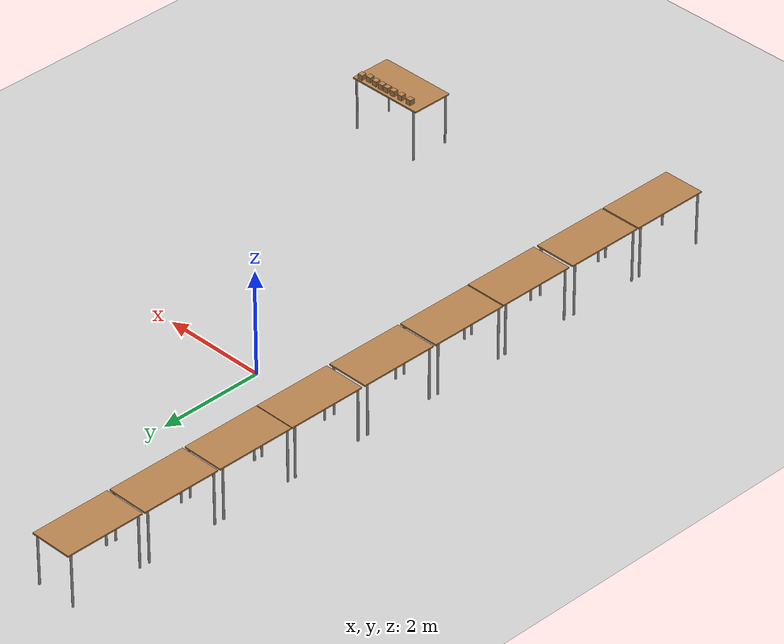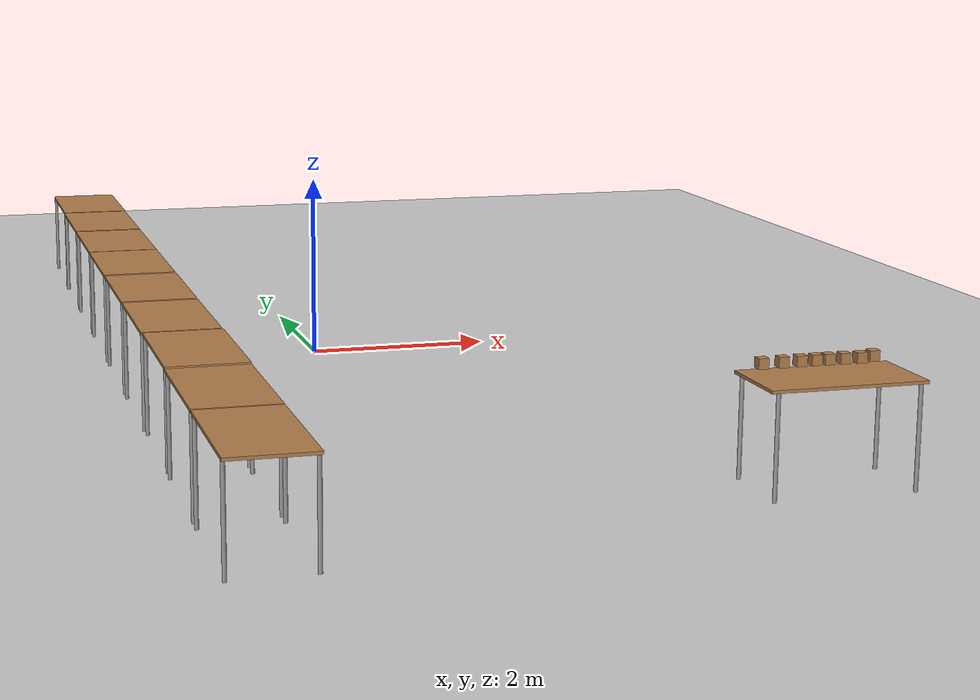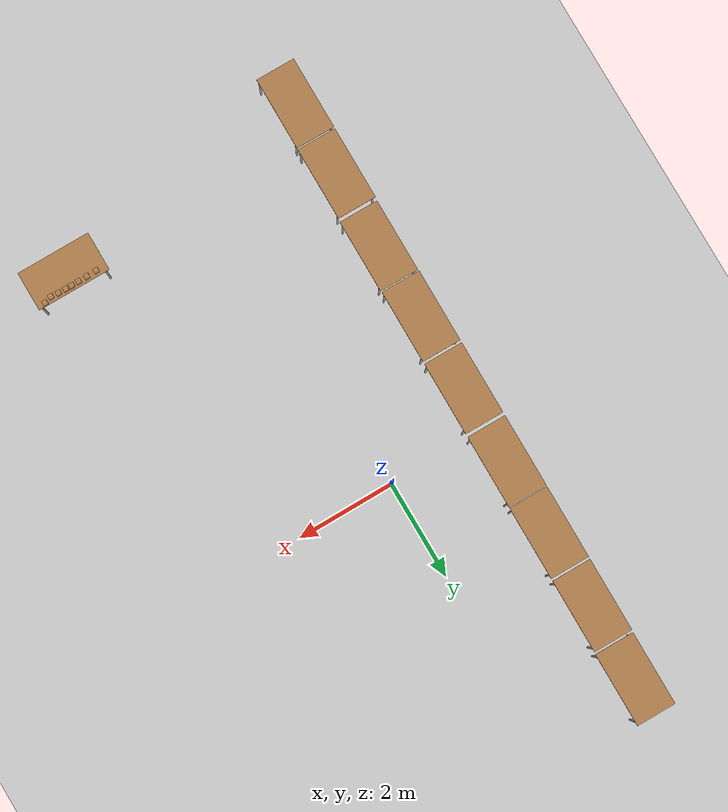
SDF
<sdf version="1.9">
 <world name="empty">
  <model name="ground_plane">
   <static>true</static>
   <link name="link">
    <collision name="collision">
     <geometry><plane><normal>0 0 1</normal><size>100 100</size></plane></geometry>
    </collision>
    <visual name="visual">
     <geometry><plane><normal>0 0 1</normal><size>100 100</size></plane></geometry>
     <material>
      <ambient>0.8 0.8 0.8 1</ambient>
      <diffuse>0.8 0.8 0.8 1</diffuse>
      <specular>0.8 0.8 0.8 1</specular>
     </material>
    </visual>
    <inertial>
     <mass>1</mass>
     <inertia><ixx>1</ixx><ixy>0</ixy><ixz>0</ixz><iyy>1</iyy><iyz>0</iyz><izz>1</izz></inertia>
    </inertial>
   </link>
  </model>
  <model name="Table">
   <static>true</static>
   <link name="link">
    <collision name="surface">
     <pose>0 0 1.0 0 0 0</pose>
     <geometry><box><size>1.5 0.8 0.03</size></box></geometry>
     <surface><friction><ode><mu>0.59999999999999998</mu><mu2>0.59999999999999998</mu2></ode></friction></surface>
    </collision>
    <visual name="visual1">
     <pose>0 0 1.0 0 0 0</pose>
     <geometry><box><size>1.5 0.8 0.03</size></box></geometry>
     <material>
      <diffuse>1 1 1 1</diffuse>
      <script><uri>file://media/materials/scripts/gazebo.material</uri><name>Gazebo/Wood</name></script>
      <pbr>
       <metal>
        <albedo_map>https://fuel.gazebosim.org/1.0/openrobotics/models/table/4/files/Table_Diffuse.jpg</albedo_map>
       </metal>
      </pbr>
     </material>
    </visual>
    <collision name="front_left_leg">
     <pose>0.68 0.38 0.5 0 0 0</pose>
     <geometry><cylinder><radius>0.02</radius><length>1</length></cylinder></geometry>
    </collision>
    <visual name="front_left_leg">
     <pose>0.68 0.38 0.5 0 0 0</pose>
     <geometry><cylinder><radius>0.02</radius><length>1</length></cylinder></geometry>
     <material>
      <diffuse>0.5 0.5 0.5 1</diffuse>
      <script><uri>file://media/materials/scripts/gazebo.material</uri><name>Gazebo/Grey</name></script>
     </material>
    </visual>
    <collision name="front_right_leg">
     <pose>0.68 -0.38 0.5 0 0 0</pose>
     <geometry><cylinder><radius>0.02</radius><length>1</length></cylinder></geometry>
    </collision>
    <visual name="front_right_leg">
     <pose>0.68 -0.38 0.5 0 0 0</pose>
     <geometry><cylinder><radius>0.02</radius><length>1</length></cylinder></geometry>
     <material>
      <diffuse>0.5 0.5 0.5 1</diffuse>
      <script><uri>file://media/materials/scripts/gazebo.material</uri><name>Gazebo/Grey</name></script>
     </material>
    </visual>
    <collision name="back_right_leg">
     <pose>-0.68 -0.38 0.5 0 0 0</pose>
     <geometry><cylinder><radius>0.02</radius><length>1</length></cylinder></geometry>
    </collision>
    <visual name="back_right_leg">
     <pose>-0.68 -0.38 0.5 0 0 0</pose>
     <geometry><cylinder><radius>0.02</radius><length>1</length></cylinder></geometry>
     <material>
      <diffuse>0.5 0.5 0.5 1</diffuse>
      <script><uri>file://media/materials/scripts/gazebo.material</uri><name>Gazebo/Grey</name></script>
     </material>
    </visual>
    <collision name="back_left_leg">
     <pose>-0.68 0.38 0.5 0 0 0</pose>
     <geometry><cylinder><radius>0.02</radius><length>1</length></cylinder></geometry>
    </collision>
    <visual name="back_left_leg">
     <pose>-0.68 0.38 0.5 0 0 0</pose>
     <geometry><cylinder><radius>0.02</radius><length>1</length></cylinder></geometry>
     <material>
      <diffuse>0.5 0.5 0.5 1</diffuse>
      <script><uri>file://media/materials/scripts/gazebo.material</uri><name>Gazebo/Grey</name></script>
     </material>
    </visual>
    <inertial>
     <mass>1</mass>
     <inertia><ixx>1</ixx><ixy>0</ixy><ixz>0</ixz><iyy>1</iyy><iyz>0</iyz><izz>1</izz></inertia>
    </inertial>
   </link>
   <pose>3.27372 -6.4538 0 0 -0 0</pose>
  </model>
  <model name="Table_0">
   <static>true</static>
   <link name="link">
    <collision name="surface">
     <pose>0 0 1.0 0 0 0</pose>
     <geometry><box><size>1.5 0.8 0.03</size></box></geometry>
     <surface><friction><ode><mu>0.59999999999999998</mu><mu2>0.59999999999999998</mu2></ode></friction></surface>
    </collision>
    <visual name="visual1">
     <pose>0 0 1.0 0 0 0</pose>
     <geometry><box><size>1.5 0.8 0.03</size></box></geometry>
     <material>
      <diffuse>1 1 1 1</diffuse>
      <script><uri>file://media/materials/scripts/gazebo.material</uri><name>Gazebo/Wood</name></script>
      <pbr>
       <metal>
        <albedo_map>https://fuel.gazebosim.org/1.0/openrobotics/models/table/4/files/Table_Diffuse.jpg</albedo_map>
       </metal>
      </pbr>
     </material>
    </visual>
    <collision name="front_left_leg">
     <pose>0.68 0.38 0.5 0 0 0</pose>
     <geometry><cylinder><radius>0.02</radius><length>1</length></cylinder></geometry>
    </collision>
    <visual name="front_left_leg">
     <pose>0.68 0.38 0.5 0 0 0</pose>
     <geometry><cylinder><radius>0.02</radius><length>1</length></cylinder></geometry>
     <material>
      <diffuse>0.5 0.5 0.5 1</diffuse>
      <script><uri>file://media/materials/scripts/gazebo.material</uri><name>Gazebo/Grey</name></script>
     </material>
    </visual>
    <collision name="front_right_leg">
     <pose>0.68 -0.38 0.5 0 0 0</pose>
     <geometry><cylinder><radius>0.02</radius><length>1</length></cylinder></geometry>
    </collision>
    <visual name="front_right_leg">
     <pose>0.68 -0.38 0.5 0 0 0</pose>
     <geometry><cylinder><radius>0.02</radius><length>1</length></cylinder></geometry>
     <material>
      <diffuse>0.5 0.5 0.5 1</diffuse>
      <script><uri>file://media/materials/scripts/gazebo.material</uri><name>Gazebo/Grey</name></script>
     </material>
    </visual>
    <collision name="back_right_leg">
     <pose>-0.68 -0.38 0.5 0 0 0</pose>
     <geometry><cylinder><radius>0.02</radius><length>1</length></cylinder></geometry>
    </collision>
    <visual name="back_right_leg">
     <pose>-0.68 -0.38 0.5 0 0 0</pose>
     <geometry><cylinder><radius>0.02</radius><length>1</length></cylinder></geometry>
     <material>
      <diffuse>0.5 0.5 0.5 1</diffuse>
      <script><uri>file://media/materials/scripts/gazebo.material</uri><name>Gazebo/Grey</name></script>
     </material>
    </visual>
    <collision name="back_left_leg">
     <pose>-0.68 0.38 0.5 0 0 0</pose>
     <geometry><cylinder><radius>0.02</radius><length>1</length></cylinder></geometry>
    </collision>
    <visual name="back_left_leg">
     <pose>-0.68 0.38 0.5 0 0 0</pose>
     <geometry><cylinder><radius>0.02</radius><length>1</length></cylinder></geometry>
     <material>
      <diffuse>0.5 0.5 0.5 1</diffuse>
      <script><uri>file://media/materials/scripts/gazebo.material</uri><name>Gazebo/Grey</name></script>
     </material>
    </visual>
    <inertial>
     <mass>1</mass>
     <inertia><ixx>1</ixx><ixy>0</ixy><ixz>0</ixz><iyy>1</iyy><iyz>0</iyz><izz>1</izz></inertia>
    </inertial>
   </link>
   <pose>-2.02943 -7.00327 0 0 0 -1.57338</pose>
  </model>
  <model name="wood_cube_10cm">
   <link name="link">
    <pose>0 0 0.05 0 -0 0</pose>
    <inertial>
     <mass>0.51670000000000005</mass>
     <inertia>
      <ixx>0.00086116700000000003</ixx>
      <ixy>0</ixy>
      <ixz>0</ixz>
      <iyy>0.00086116700000000003</iyy>
      <iyz>0</iyz>
      <izz>0.00086116700000000003</izz>
     </inertia>
    </inertial>
    <collision name="collision">
     <geometry><box><size>0.1 0.1 0.1</size></box></geometry>
     <surface>
      <contact>
       <poissons_ratio>0.34699999999999998</poissons_ratio>
       <elastic_modulus>8800000000</elastic_modulus>
       <ode><kp>100000</kp><kd>100</kd><max_vel>100</max_vel><min_depth>0.001</min_depth></ode>
      </contact>
      <friction>
       <torsional>
        <coefficient>1</coefficient>
        <use_patch_radius>false</use_patch_radius>
        <surface_radius>0.01</surface_radius>
       </torsional>
      </friction>
     </surface>
    </collision>
    <visual name="visual">
     <geometry><box><size>0.1 0.1 0.1</size></box></geometry>
     <material>
      <script><uri>file://media/materials/scripts/gazebo.material</uri><name>Gazebo/Wood</name></script>
     </material>
    </visual>
   </link>
   <pose>2.74446 -6.14621 1.04042 0 -0 0</pose>
   <static>false</static>
  </model>
  <model name="Table_0_1">
   <static>true</static>
   <link name="link">
    <collision name="surface">
     <pose>0 0 1.0 0 0 0</pose>
     <geometry><box><size>1.5 0.8 0.03</size></box></geometry>
     <surface><friction><ode><mu>0.59999999999999998</mu><mu2>0.59999999999999998</mu2></ode></friction></surface>
    </collision>
    <visual name="visual1">
     <pose>0 0 1.0 0 0 0</pose>
     <geometry><box><size>1.5 0.8 0.03</size></box></geometry>
     <material>
      <diffuse>1 1 1 1</diffuse>
      <script><uri>file://media/materials/scripts/gazebo.material</uri><name>Gazebo/Wood</name></script>
      <pbr>
       <metal>
        <albedo_map>https://fuel.gazebosim.org/1.0/openrobotics/models/table/4/files/Table_Diffuse.jpg</albedo_map>
       </metal>
      </pbr>
     </material>
    </visual>
    <collision name="front_left_leg">
     <pose>0.68 0.38 0.5 0 0 0</pose>
     <geometry><cylinder><radius>0.02</radius><length>1</length></cylinder></geometry>
    </collision>
    <visual name="front_left_leg">
     <pose>0.68 0.38 0.5 0 0 0</pose>
     <geometry><cylinder><radius>0.02</radius><length>1</length></cylinder></geometry>
     <material>
      <diffuse>0.5 0.5 0.5 1</diffuse>
      <script><uri>file://media/materials/scripts/gazebo.material</uri><name>Gazebo/Grey</name></script>
     </material>
    </visual>
    <collision name="front_right_leg">
     <pose>0.68 -0.38 0.5 0 0 0</pose>
     <geometry><cylinder><radius>0.02</radius><length>1</length></cylinder></geometry>
    </collision>
    <visual name="front_right_leg">
     <pose>0.68 -0.38 0.5 0 0 0</pose>
     <geometry><cylinder><radius>0.02</radius><length>1</length></cylinder></geometry>
     <material>
      <diffuse>0.5 0.5 0.5 1</diffuse>
      <script><uri>file://media/materials/scripts/gazebo.material</uri><name>Gazebo/Grey</name></script>
     </material>
    </visual>
    <collision name="back_right_leg">
     <pose>-0.68 -0.38 0.5 0 0 0</pose>
     <geometry><cylinder><radius>0.02</radius><length>1</length></cylinder></geometry>
    </collision>
    <visual name="back_right_leg">
     <pose>-0.68 -0.38 0.5 0 0 0</pose>
     <geometry><cylinder><radius>0.02</radius><length>1</length></cylinder></geometry>
     <material>
      <diffuse>0.5 0.5 0.5 1</diffuse>
      <script><uri>file://media/materials/scripts/gazebo.material</uri><name>Gazebo/Grey</name></script>
     </material>
    </visual>
    <collision name="back_left_leg">
     <pose>-0.68 0.38 0.5 0 0 0</pose>
     <geometry><cylinder><radius>0.02</radius><length>1</length></cylinder></geometry>
    </collision>
    <visual name="back_left_leg">
     <pose>-0.68 0.38 0.5 0 0 0</pose>
     <geometry><cylinder><radius>0.02</radius><length>1</length></cylinder></geometry>
     <material>
      <diffuse>0.5 0.5 0.5 1</diffuse>
      <script><uri>file://media/materials/scripts/gazebo.material</uri><name>Gazebo/Grey</name></script>
     </material>
    </visual>
    <inertial>
     <mass>1</mass>
     <inertia><ixx>1</ixx><ixy>0</ixy><ixz>0</ixz><iyy>1</iyy><iyz>0</iyz><izz>1</izz></inertia>
    </inertial>
   </link>
   <pose>-2.02364 -5.47185 0 0 0 -1.57338</pose>
  </model>
  <model name="Table_0_2">
   <static>true</static>
   <link name="link">
    <collision name="surface">
     <pose>0 0 1.0 0 0 0</pose>
     <geometry><box><size>1.5 0.8 0.03</size></box></geometry>
     <surface><friction><ode><mu>0.59999999999999998</mu><mu2>0.59999999999999998</mu2></ode></friction></surface>
    </collision>
    <visual name="visual1">
     <pose>0 0 1.0 0 0 0</pose>
     <geometry><box><size>1.5 0.8 0.03</size></box></geometry>
     <material>
      <diffuse>1 1 1 1</diffuse>
      <script><uri>file://media/materials/scripts/gazebo.material</uri><name>Gazebo/Wood</name></script>
      <pbr>
       <metal>
        <albedo_map>https://fuel.gazebosim.org/1.0/openrobotics/models/table/4/files/Table_Diffuse.jpg</albedo_map>
       </metal>
      </pbr>
     </material>
    </visual>
    <collision name="front_left_leg">
     <pose>0.68 0.38 0.5 0 0 0</pose>
     <geometry><cylinder><radius>0.02</radius><length>1</length></cylinder></geometry>
    </collision>
    <visual name="front_left_leg">
     <pose>0.68 0.38 0.5 0 0 0</pose>
     <geometry><cylinder><radius>0.02</radius><length>1</length></cylinder></geometry>
     <material>
      <diffuse>0.5 0.5 0.5 1</diffuse>
      <script><uri>file://media/materials/scripts/gazebo.material</uri><name>Gazebo/Grey</name></script>
     </material>
    </visual>
    <collision name="front_right_leg">
     <pose>0.68 -0.38 0.5 0 0 0</pose>
     <geometry><cylinder><radius>0.02</radius><length>1</length></cylinder></geometry>
    </collision>
    <visual name="front_right_leg">
     <pose>0.68 -0.38 0.5 0 0 0</pose>
     <geometry><cylinder><radius>0.02</radius><length>1</length></cylinder></geometry>
     <material>
      <diffuse>0.5 0.5 0.5 1</diffuse>
      <script><uri>file://media/materials/scripts/gazebo.material</uri><name>Gazebo/Grey</name></script>
     </material>
    </visual>
    <collision name="back_right_leg">
     <pose>-0.68 -0.38 0.5 0 0 0</pose>
     <geometry><cylinder><radius>0.02</radius><length>1</length></cylinder></geometry>
    </collision>
    <visual name="back_right_leg">
     <pose>-0.68 -0.38 0.5 0 0 0</pose>
     <geometry><cylinder><radius>0.02</radius><length>1</length></cylinder></geometry>
     <material>
      <diffuse>0.5 0.5 0.5 1</diffuse>
      <script><uri>file://media/materials/scripts/gazebo.material</uri><name>Gazebo/Grey</name></script>
     </material>
    </visual>
    <collision name="back_left_leg">
     <pose>-0.68 0.38 0.5 0 0 0</pose>
     <geometry><cylinder><radius>0.02</radius><length>1</length></cylinder></geometry>
    </collision>
    <visual name="back_left_leg">
     <pose>-0.68 0.38 0.5 0 0 0</pose>
     <geometry><cylinder><radius>0.02</radius><length>1</length></cylinder></geometry>
     <material>
      <diffuse>0.5 0.5 0.5 1</diffuse>
      <script><uri>file://media/materials/scripts/gazebo.material</uri><name>Gazebo/Grey</name></script>
     </material>
    </visual>
    <inertial>
     <mass>1</mass>
     <inertia><ixx>1</ixx><ixy>0</ixy><ixz>0</ixz><iyy>1</iyy><iyz>0</iyz><izz>1</izz></inertia>
    </inertial>
   </link>
   <pose>-2.00777 -3.89952 0 0 0 -1.57338</pose>
  </model>
  <model name="Table_0_3">
   <static>true</static>
   <link name="link">
    <collision name="surface">
     <pose>0 0 1.0 0 0 0</pose>
     <geometry><box><size>1.5 0.8 0.03</size></box></geometry>
     <surface><friction><ode><mu>0.59999999999999998</mu><mu2>0.59999999999999998</mu2></ode></friction></surface>
    </collision>
    <visual name="visual1">
     <pose>0 0 1.0 0 0 0</pose>
     <geometry><box><size>1.5 0.8 0.03</size></box></geometry>
     <material>
      <diffuse>1 1 1 1</diffuse>
      <script><uri>file://media/materials/scripts/gazebo.material</uri><name>Gazebo/Wood</name></script>
      <pbr>
       <metal>
        <albedo_map>https://fuel.gazebosim.org/1.0/openrobotics/models/table/4/files/Table_Diffuse.jpg</albedo_map>
       </metal>
      </pbr>
     </material>
    </visual>
    <collision name="front_left_leg">
     <pose>0.68 0.38 0.5 0 0 0</pose>
     <geometry><cylinder><radius>0.02</radius><length>1</length></cylinder></geometry>
    </collision>
    <visual name="front_left_leg">
     <pose>0.68 0.38 0.5 0 0 0</pose>
     <geometry><cylinder><radius>0.02</radius><length>1</length></cylinder></geometry>
     <material>
      <diffuse>0.5 0.5 0.5 1</diffuse>
      <script><uri>file://media/materials/scripts/gazebo.material</uri><name>Gazebo/Grey</name></script>
     </material>
    </visual>
    <collision name="front_right_leg">
     <pose>0.68 -0.38 0.5 0 0 0</pose>
     <geometry><cylinder><radius>0.02</radius><length>1</length></cylinder></geometry>
    </collision>
    <visual name="front_right_leg">
     <pose>0.68 -0.38 0.5 0 0 0</pose>
     <geometry><cylinder><radius>0.02</radius><length>1</length></cylinder></geometry>
     <material>
      <diffuse>0.5 0.5 0.5 1</diffuse>
      <script><uri>file://media/materials/scripts/gazebo.material</uri><name>Gazebo/Grey</name></script>
     </material>
    </visual>
    <collision name="back_right_leg">
     <pose>-0.68 -0.38 0.5 0 0 0</pose>
     <geometry><cylinder><radius>0.02</radius><length>1</length></cylinder></geometry>
    </collision>
    <visual name="back_right_leg">
     <pose>-0.68 -0.38 0.5 0 0 0</pose>
     <geometry><cylinder><radius>0.02</radius><length>1</length></cylinder></geometry>
     <material>
      <diffuse>0.5 0.5 0.5 1</diffuse>
      <script><uri>file://media/materials/scripts/gazebo.material</uri><name>Gazebo/Grey</name></script>
     </material>
    </visual>
    <collision name="back_left_leg">
     <pose>-0.68 0.38 0.5 0 0 0</pose>
     <geometry><cylinder><radius>0.02</radius><length>1</length></cylinder></geometry>
    </collision>
    <visual name="back_left_leg">
     <pose>-0.68 0.38 0.5 0 0 0</pose>
     <geometry><cylinder><radius>0.02</radius><length>1</length></cylinder></geometry>
     <material>
      <diffuse>0.5 0.5 0.5 1</diffuse>
      <script><uri>file://media/materials/scripts/gazebo.material</uri><name>Gazebo/Grey</name></script>
     </material>
    </visual>
    <inertial>
     <mass>1</mass>
     <inertia><ixx>1</ixx><ixy>0</ixy><ixz>0</ixz><iyy>1</iyy><iyz>0</iyz><izz>1</izz></inertia>
    </inertial>
   </link>
   <pose>-2.01273 -2.37281 0 0 0 -1.57338</pose>
  </model>
  <model name="Table_0_4">
   <static>true</static>
   <link name="link">
    <collision name="surface">
     <pose>0 0 1.0 0 0 0</pose>
     <geometry><box><size>1.5 0.8 0.03</size></box></geometry>
     <surface><friction><ode><mu>0.59999999999999998</mu><mu2>0.59999999999999998</mu2></ode></friction></surface>
    </collision>
    <visual name="visual1">
     <pose>0 0 1.0 0 0 0</pose>
     <geometry><box><size>1.5 0.8 0.03</size></box></geometry>
     <material>
      <diffuse>1 1 1 1</diffuse>
      <script><uri>file://media/materials/scripts/gazebo.material</uri><name>Gazebo/Wood</name></script>
      <pbr>
       <metal>
        <albedo_map>https://fuel.gazebosim.org/1.0/openrobotics/models/table/4/files/Table_Diffuse.jpg</albedo_map>
       </metal>
      </pbr>
     </material>
    </visual>
    <collision name="front_left_leg">
     <pose>0.68 0.38 0.5 0 0 0</pose>
     <geometry><cylinder><radius>0.02</radius><length>1</length></cylinder></geometry>
    </collision>
    <visual name="front_left_leg">
     <pose>0.68 0.38 0.5 0 0 0</pose>
     <geometry><cylinder><radius>0.02</radius><length>1</length></cylinder></geometry>
     <material>
      <diffuse>0.5 0.5 0.5 1</diffuse>
      <script><uri>file://media/materials/scripts/gazebo.material</uri><name>Gazebo/Grey</name></script>
     </material>
    </visual>
    <collision name="front_right_leg">
     <pose>0.68 -0.38 0.5 0 0 0</pose>
     <geometry><cylinder><radius>0.02</radius><length>1</length></cylinder></geometry>
    </collision>
    <visual name="front_right_leg">
     <pose>0.68 -0.38 0.5 0 0 0</pose>
     <geometry><cylinder><radius>0.02</radius><length>1</length></cylinder></geometry>
     <material>
      <diffuse>0.5 0.5 0.5 1</diffuse>
      <script><uri>file://media/materials/scripts/gazebo.material</uri><name>Gazebo/Grey</name></script>
     </material>
    </visual>
    <collision name="back_right_leg">
     <pose>-0.68 -0.38 0.5 0 0 0</pose>
     <geometry><cylinder><radius>0.02</radius><length>1</length></cylinder></geometry>
    </collision>
    <visual name="back_right_leg">
     <pose>-0.68 -0.38 0.5 0 0 0</pose>
     <geometry><cylinder><radius>0.02</radius><length>1</length></cylinder></geometry>
     <material>
      <diffuse>0.5 0.5 0.5 1</diffuse>
      <script><uri>file://media/materials/scripts/gazebo.material</uri><name>Gazebo/Grey</name></script>
     </material>
    </visual>
    <collision name="back_left_leg">
     <pose>-0.68 0.38 0.5 0 0 0</pose>
     <geometry><cylinder><radius>0.02</radius><length>1</length></cylinder></geometry>
    </collision>
    <visual name="back_left_leg">
     <pose>-0.68 0.38 0.5 0 0 0</pose>
     <geometry><cylinder><radius>0.02</radius><length>1</length></cylinder></geometry>
     <material>
      <diffuse>0.5 0.5 0.5 1</diffuse>
      <script><uri>file://media/materials/scripts/gazebo.material</uri><name>Gazebo/Grey</name></script>
     </material>
    </visual>
    <inertial>
     <mass>1</mass>
     <inertia><ixx>1</ixx><ixy>0</ixy><ixz>0</ixz><iyy>1</iyy><iyz>0</iyz><izz>1</izz></inertia>
    </inertial>
   </link>
   <pose>-2.00797 -0.821889 0 0 0 -1.57338</pose>
  </model>
  <model name="Table_0_5">
   <static>true</static>
   <link name="link">
    <collision name="surface">
     <pose>0 0 1.0 0 0 0</pose>
     <geometry><box><size>1.5 0.8 0.03</size></box></geometry>
     <surface><friction><ode><mu>0.59999999999999998</mu><mu2>0.59999999999999998</mu2></ode></friction></surface>
    </collision>
    <visual name="visual1">
     <pose>0 0 1.0 0 0 0</pose>
     <geometry><box><size>1.5 0.8 0.03</size></box></geometry>
     <material>
      <diffuse>1 1 1 1</diffuse>
      <script><uri>file://media/materials/scripts/gazebo.material</uri><name>Gazebo/Wood</name></script>
      <pbr>
       <metal>
        <albedo_map>https://fuel.gazebosim.org/1.0/openrobotics/models/table/4/files/Table_Diffuse.jpg</albedo_map>
       </metal>
      </pbr>
     </material>
    </visual>
    <collision name="front_left_leg">
     <pose>0.68 0.38 0.5 0 0 0</pose>
     <geometry><cylinder><radius>0.02</radius><length>1</length></cylinder></geometry>
    </collision>
    <visual name="front_left_leg">
     <pose>0.68 0.38 0.5 0 0 0</pose>
     <geometry><cylinder><radius>0.02</radius><length>1</length></cylinder></geometry>
     <material>
      <diffuse>0.5 0.5 0.5 1</diffuse>
      <script><uri>file://media/materials/scripts/gazebo.material</uri><name>Gazebo/Grey</name></script>
     </material>
    </visual>
    <collision name="front_right_leg">
     <pose>0.68 -0.38 0.5 0 0 0</pose>
     <geometry><cylinder><radius>0.02</radius><length>1</length></cylinder></geometry>
    </collision>
    <visual name="front_right_leg">
     <pose>0.68 -0.38 0.5 0 0 0</pose>
     <geometry><cylinder><radius>0.02</radius><length>1</length></cylinder></geometry>
     <material>
      <diffuse>0.5 0.5 0.5 1</diffuse>
      <script><uri>file://media/materials/scripts/gazebo.material</uri><name>Gazebo/Grey</name></script>
     </material>
    </visual>
    <collision name="back_right_leg">
     <pose>-0.68 -0.38 0.5 0 0 0</pose>
     <geometry><cylinder><radius>0.02</radius><length>1</length></cylinder></geometry>
    </collision>
    <visual name="back_right_leg">
     <pose>-0.68 -0.38 0.5 0 0 0</pose>
     <geometry><cylinder><radius>0.02</radius><length>1</length></cylinder></geometry>
     <material>
      <diffuse>0.5 0.5 0.5 1</diffuse>
      <script><uri>file://media/materials/scripts/gazebo.material</uri><name>Gazebo/Grey</name></script>
     </material>
    </visual>
    <collision name="back_left_leg">
     <pose>-0.68 0.38 0.5 0 0 0</pose>
     <geometry><cylinder><radius>0.02</radius><length>1</length></cylinder></geometry>
    </collision>
    <visual name="back_left_leg">
     <pose>-0.68 0.38 0.5 0 0 0</pose>
     <geometry><cylinder><radius>0.02</radius><length>1</length></cylinder></geometry>
     <material>
      <diffuse>0.5 0.5 0.5 1</diffuse>
      <script><uri>file://media/materials/scripts/gazebo.material</uri><name>Gazebo/Grey</name></script>
     </material>
    </visual>
    <inertial>
     <mass>1</mass>
     <inertia><ixx>1</ixx><ixy>0</ixy><ixz>0</ixz><iyy>1</iyy><iyz>0</iyz><izz>1</izz></inertia>
    </inertial>
   </link>
   <pose>-2.00482 0.744512 0 0 0 -1.57338</pose>
  </model>
  <model name="Table_0_6">
   <static>true</static>
   <link name="link">
    <collision name="surface">
     <pose>0 0 1.0 0 0 0</pose>
     <geometry><box><size>1.5 0.8 0.03</size></box></geometry>
     <surface><friction><ode><mu>0.59999999999999998</mu><mu2>0.59999999999999998</mu2></ode></friction></surface>
    </collision>
    <visual name="visual1">
     <pose>0 0 1.0 0 0 0</pose>
     <geometry><box><size>1.5 0.8 0.03</size></box></geometry>
     <material>
      <diffuse>1 1 1 1</diffuse>
      <script><uri>file://media/materials/scripts/gazebo.material</uri><name>Gazebo/Wood</name></script>
      <pbr>
       <metal>
        <albedo_map>https://fuel.gazebosim.org/1.0/openrobotics/models/table/4/files/Table_Diffuse.jpg</albedo_map>
       </metal>
      </pbr>
     </material>
    </visual>
    <collision name="front_left_leg">
     <pose>0.68 0.38 0.5 0 0 0</pose>
     <geometry><cylinder><radius>0.02</radius><length>1</length></cylinder></geometry>
    </collision>
    <visual name="front_left_leg">
     <pose>0.68 0.38 0.5 0 0 0</pose>
     <geometry><cylinder><radius>0.02</radius><length>1</length></cylinder></geometry>
     <material>
      <diffuse>0.5 0.5 0.5 1</diffuse>
      <script><uri>file://media/materials/scripts/gazebo.material</uri><name>Gazebo/Grey</name></script>
     </material>
    </visual>
    <collision name="front_right_leg">
     <pose>0.68 -0.38 0.5 0 0 0</pose>
     <geometry><cylinder><radius>0.02</radius><length>1</length></cylinder></geometry>
    </collision>
    <visual name="front_right_leg">
     <pose>0.68 -0.38 0.5 0 0 0</pose>
     <geometry><cylinder><radius>0.02</radius><length>1</length></cylinder></geometry>
     <material>
      <diffuse>0.5 0.5 0.5 1</diffuse>
      <script><uri>file://media/materials/scripts/gazebo.material</uri><name>Gazebo/Grey</name></script>
     </material>
    </visual>
    <collision name="back_right_leg">
     <pose>-0.68 -0.38 0.5 0 0 0</pose>
     <geometry><cylinder><radius>0.02</radius><length>1</length></cylinder></geometry>
    </collision>
    <visual name="back_right_leg">
     <pose>-0.68 -0.38 0.5 0 0 0</pose>
     <geometry><cylinder><radius>0.02</radius><length>1</length></cylinder></geometry>
     <material>
      <diffuse>0.5 0.5 0.5 1</diffuse>
      <script><uri>file://media/materials/scripts/gazebo.material</uri><name>Gazebo/Grey</name></script>
     </material>
    </visual>
    <collision name="back_left_leg">
     <pose>-0.68 0.38 0.5 0 0 0</pose>
     <geometry><cylinder><radius>0.02</radius><length>1</length></cylinder></geometry>
    </collision>
    <visual name="back_left_leg">
     <pose>-0.68 0.38 0.5 0 0 0</pose>
     <geometry><cylinder><radius>0.02</radius><length>1</length></cylinder></geometry>
     <material>
      <diffuse>0.5 0.5 0.5 1</diffuse>
      <script><uri>file://media/materials/scripts/gazebo.material</uri><name>Gazebo/Grey</name></script>
     </material>
    </visual>
    <inertial>
     <mass>1</mass>
     <inertia><ixx>1</ixx><ixy>0</ixy><ixz>0</ixz><iyy>1</iyy><iyz>0</iyz><izz>1</izz></inertia>
    </inertial>
   </link>
   <pose>-1.9994 2.25999 0 0 0 -1.57338</pose>
  </model>
  <model name="Table_0_7">
   <static>true</static>
   <link name="link">
    <collision name="surface">
     <pose>0 0 1.0 0 0 0</pose>
     <geometry><box><size>1.5 0.8 0.03</size></box></geometry>
     <surface><friction><ode><mu>0.59999999999999998</mu><mu2>0.59999999999999998</mu2></ode></friction></surface>
    </collision>
    <visual name="visual1">
     <pose>0 0 1.0 0 0 0</pose>
     <geometry><box><size>1.5 0.8 0.03</size></box></geometry>
     <material>
      <diffuse>1 1 1 1</diffuse>
      <script><uri>file://media/materials/scripts/gazebo.material</uri><name>Gazebo/Wood</name></script>
      <pbr>
       <metal>
        <albedo_map>https://fuel.gazebosim.org/1.0/openrobotics/models/table/4/files/Table_Diffuse.jpg</albedo_map>
       </metal>
      </pbr>
     </material>
    </visual>
    <collision name="front_left_leg">
     <pose>0.68 0.38 0.5 0 0 0</pose>
     <geometry><cylinder><radius>0.02</radius><length>1</length></cylinder></geometry>
    </collision>
    <visual name="front_left_leg">
     <pose>0.68 0.38 0.5 0 0 0</pose>
     <geometry><cylinder><radius>0.02</radius><length>1</length></cylinder></geometry>
     <material>
      <diffuse>0.5 0.5 0.5 1</diffuse>
      <script><uri>file://media/materials/scripts/gazebo.material</uri><name>Gazebo/Grey</name></script>
     </material>
    </visual>
    <collision name="front_right_leg">
     <pose>0.68 -0.38 0.5 0 0 0</pose>
     <geometry><cylinder><radius>0.02</radius><length>1</length></cylinder></geometry>
    </collision>
    <visual name="front_right_leg">
     <pose>0.68 -0.38 0.5 0 0 0</pose>
     <geometry><cylinder><radius>0.02</radius><length>1</length></cylinder></geometry>
     <material>
      <diffuse>0.5 0.5 0.5 1</diffuse>
      <script><uri>file://media/materials/scripts/gazebo.material</uri><name>Gazebo/Grey</name></script>
     </material>
    </visual>
    <collision name="back_right_leg">
     <pose>-0.68 -0.38 0.5 0 0 0</pose>
     <geometry><cylinder><radius>0.02</radius><length>1</length></cylinder></geometry>
    </collision>
    <visual name="back_right_leg">
     <pose>-0.68 -0.38 0.5 0 0 0</pose>
     <geometry><cylinder><radius>0.02</radius><length>1</length></cylinder></geometry>
     <material>
      <diffuse>0.5 0.5 0.5 1</diffuse>
      <script><uri>file://media/materials/scripts/gazebo.material</uri><name>Gazebo/Grey</name></script>
     </material>
    </visual>
    <collision name="back_left_leg">
     <pose>-0.68 0.38 0.5 0 0 0</pose>
     <geometry><cylinder><radius>0.02</radius><length>1</length></cylinder></geometry>
    </collision>
    <visual name="back_left_leg">
     <pose>-0.68 0.38 0.5 0 0 0</pose>
     <geometry><cylinder><radius>0.02</radius><length>1</length></cylinder></geometry>
     <material>
      <diffuse>0.5 0.5 0.5 1</diffuse>
      <script><uri>file://media/materials/scripts/gazebo.material</uri><name>Gazebo/Grey</name></script>
     </material>
    </visual>
    <inertial>
     <mass>1</mass>
     <inertia><ixx>1</ixx><ixy>0</ixy><ixz>0</ixz><iyy>1</iyy><iyz>0</iyz><izz>1</izz></inertia>
    </inertial>
   </link>
   <pose>-1.99331 3.8059 0 0 0 -1.57338</pose>
  </model>
  <model name="Table_0_8">
   <static>true</static>
   <link name="link">
    <collision name="surface">
     <pose>0 0 1.0 0 0 0</pose>
     <geometry><box><size>1.5 0.8 0.03</size></box></geometry>
     <surface><friction><ode><mu>0.59999999999999998</mu><mu2>0.59999999999999998</mu2></ode></friction></surface>
    </collision>
    <visual name="visual1">
     <pose>0 0 1.0 0 0 0</pose>
     <geometry><box><size>1.5 0.8 0.03</size></box></geometry>
     <material>
      <diffuse>1 1 1 1</diffuse>
      <script><uri>file://media/materials/scripts/gazebo.material</uri><name>Gazebo/Wood</name></script>
      <pbr>
       <metal>
        <albedo_map>https://fuel.gazebosim.org/1.0/openrobotics/models/table/4/files/Table_Diffuse.jpg</albedo_map>
       </metal>
      </pbr>
     </material>
    </visual>
    <collision name="front_left_leg">
     <pose>0.68 0.38 0.5 0 0 0</pose>
     <geometry><cylinder><radius>0.02</radius><length>1</length></cylinder></geometry>
    </collision>
    <visual name="front_left_leg">
     <pose>0.68 0.38 0.5 0 0 0</pose>
     <geometry><cylinder><radius>0.02</radius><length>1</length></cylinder></geometry>
     <material>
      <diffuse>0.5 0.5 0.5 1</diffuse>
      <script><uri>file://media/materials/scripts/gazebo.material</uri><name>Gazebo/Grey</name></script>
     </material>
    </visual>
    <collision name="front_right_leg">
     <pose>0.68 -0.38 0.5 0 0 0</pose>
     <geometry><cylinder><radius>0.02</radius><length>1</length></cylinder></geometry>
    </collision>
    <visual name="front_right_leg">
     <pose>0.68 -0.38 0.5 0 0 0</pose>
     <geometry><cylinder><radius>0.02</radius><length>1</length></cylinder></geometry>
     <material>
      <diffuse>0.5 0.5 0.5 1</diffuse>
      <script><uri>file://media/materials/scripts/gazebo.material</uri><name>Gazebo/Grey</name></script>
     </material>
    </visual>
    <collision name="back_right_leg">
     <pose>-0.68 -0.38 0.5 0 0 0</pose>
     <geometry><cylinder><radius>0.02</radius><length>1</length></cylinder></geometry>
    </collision>
    <visual name="back_right_leg">
     <pose>-0.68 -0.38 0.5 0 0 0</pose>
     <geometry><cylinder><radius>0.02</radius><length>1</length></cylinder></geometry>
     <material>
      <diffuse>0.5 0.5 0.5 1</diffuse>
      <script><uri>file://media/materials/scripts/gazebo.material</uri><name>Gazebo/Grey</name></script>
     </material>
    </visual>
    <collision name="back_left_leg">
     <pose>-0.68 0.38 0.5 0 0 0</pose>
     <geometry><cylinder><radius>0.02</radius><length>1</length></cylinder></geometry>
    </collision>
    <visual name="back_left_leg">
     <pose>-0.68 0.38 0.5 0 0 0</pose>
     <geometry><cylinder><radius>0.02</radius><length>1</length></cylinder></geometry>
     <material>
      <diffuse>0.5 0.5 0.5 1</diffuse>
      <script><uri>file://media/materials/scripts/gazebo.material</uri><name>Gazebo/Grey</name></script>
     </material>
    </visual>
    <inertial>
     <mass>1</mass>
     <inertia><ixx>1</ixx><ixy>0</ixy><ixz>0</ixz><iyy>1</iyy><iyz>0</iyz><izz>1</izz></inertia>
    </inertial>
   </link>
   <pose>-1.97964 5.34876 0 0 0 -1.57338</pose>
  </model>
  <model name="wood_cube_10cm_1">
   <link name="link">
    <pose>0 0 0.05 0 -0 0</pose>
    <inertial>
     <mass>0.51670000000000005</mass>
     <inertia>
      <ixx>0.00086116700000000003</ixx>
      <ixy>0</ixy>
      <ixz>0</ixz>
      <iyy>0.00086116700000000003</iyy>
      <iyz>0</iyz>
      <izz>0.00086116700000000003</izz>
     </inertia>
    </inertial>
    <collision name="collision">
     <geometry><box><size>0.1 0.1 0.1</size></box></geometry>
     <surface>
      <contact>
       <poissons_ratio>0.34699999999999998</poissons_ratio>
       <elastic_modulus>8800000000</elastic_modulus>
       <ode><kp>100000</kp><kd>100</kd><max_vel>100</max_vel><min_depth>0.001</min_depth></ode>
      </contact>
      <friction>
       <torsional>
        <coefficient>1</coefficient>
        <use_patch_radius>false</use_patch_radius>
        <surface_radius>0.01</surface_radius>
       </torsional>
      </friction>
     </surface>
    </collision>
    <visual name="visual">
     <geometry><box><size>0.1 0.1 0.1</size></box></geometry>
     <material>
      <script><uri>file://media/materials/scripts/gazebo.material</uri><name>Gazebo/Wood</name></script>
     </material>
    </visual>
   </link>
   <pose>2.94626 -6.13952 1.04042 0 -0 0</pose>
   <static>false</static>
  </model>
  <model name="wood_cube_10cm_1_1">
   <link name="link">
    <pose>0 0 0.05 0 -0 0</pose>
    <inertial>
     <mass>0.51670000000000005</mass>
     <inertia>
      <ixx>0.00086116700000000003</ixx>
      <ixy>0</ixy>
      <ixz>0</ixz>
      <iyy>0.00086116700000000003</iyy>
      <iyz>0</iyz>
      <izz>0.00086116700000000003</izz>
     </inertia>
    </inertial>
    <collision name="collision">
     <geometry><box><size>0.1 0.1 0.1</size></box></geometry>
     <surface>
      <contact>
       <poissons_ratio>0.34699999999999998</poissons_ratio>
       <elastic_modulus>8800000000</elastic_modulus>
       <ode><kp>100000</kp><kd>100</kd><max_vel>100</max_vel><min_depth>0.001</min_depth></ode>
      </contact>
      <friction>
       <torsional>
        <coefficient>1</coefficient>
        <use_patch_radius>false</use_patch_radius>
        <surface_radius>0.01</surface_radius>
       </torsional>
      </friction>
     </surface>
    </collision>
    <visual name="visual">
     <geometry><box><size>0.1 0.1 0.1</size></box></geometry>
     <material>
      <script><uri>file://media/materials/scripts/gazebo.material</uri><name>Gazebo/Wood</name></script>
     </material>
    </visual>
   </link>
   <pose>3.12364 -6.13713 1.04042 0 -0 0</pose>
   <static>false</static>
  </model>
  <model name="wood_cube_10cm_1_2">
   <link name="link">
    <pose>0 0 0.05 0 -0 0</pose>
    <inertial>
     <mass>0.51670000000000005</mass>
     <inertia>
      <ixx>0.00086116700000000003</ixx>
      <ixy>0</ixy>
      <ixz>0</ixz>
      <iyy>0.00086116700000000003</iyy>
      <iyz>0</iyz>
      <izz>0.00086116700000000003</izz>
     </inertia>
    </inertial>
    <collision name="collision">
     <geometry><box><size>0.1 0.1 0.1</size></box></geometry>
     <surface>
      <contact>
       <poissons_ratio>0.34699999999999998</poissons_ratio>
       <elastic_modulus>8800000000</elastic_modulus>
       <ode><kp>100000</kp><kd>100</kd><max_vel>100</max_vel><min_depth>0.001</min_depth></ode>
      </contact>
      <friction>
       <torsional>
        <coefficient>1</coefficient>
        <use_patch_radius>false</use_patch_radius>
        <surface_radius>0.01</surface_radius>
       </torsional>
      </friction>
     </surface>
    </collision>
    <visual name="visual">
     <geometry><box><size>0.1 0.1 0.1</size></box></geometry>
     <material>
      <script><uri>file://media/materials/scripts/gazebo.material</uri><name>Gazebo/Wood</name></script>
     </material>
    </visual>
   </link>
   <pose>3.27231 -6.13506 1.04042 0 -0 0</pose>
   <static>false</static>
  </model>
  <model name="wood_cube_10cm_1_3">
   <link name="link">
    <pose>0 0 0.05 0 -0 0</pose>
    <inertial>
     <mass>0.51670000000000005</mass>
     <inertia>
      <ixx>0.00086116700000000003</ixx>
      <ixy>0</ixy>
      <ixz>0</ixz>
      <iyy>0.00086116700000000003</iyy>
      <iyz>0</iyz>
      <izz>0.00086116700000000003</izz>
     </inertia>
    </inertial>
    <collision name="collision">
     <geometry><box><size>0.1 0.1 0.1</size></box></geometry>
     <surface>
      <contact>
       <poissons_ratio>0.34699999999999998</poissons_ratio>
       <elastic_modulus>8800000000</elastic_modulus>
       <ode><kp>100000</kp><kd>100</kd><max_vel>100</max_vel><min_depth>0.001</min_depth></ode>
      </contact>
      <friction>
       <torsional>
        <coefficient>1</coefficient>
        <use_patch_radius>false</use_patch_radius>
        <surface_radius>0.01</surface_radius>
       </torsional>
      </friction>
     </surface>
    </collision>
    <visual name="visual">
     <geometry><box><size>0.1 0.1 0.1</size></box></geometry>
     <material>
      <script><uri>file://media/materials/scripts/gazebo.material</uri><name>Gazebo/Wood</name></script>
     </material>
    </visual>
   </link>
   <pose>3.39999 -6.13476 1.04042 0 -0 0</pose>
   <static>false</static>
  </model>
  <model name="wood_cube_10cm_1_3_1">
   <link name="link">
    <pose>0 0 0.05 0 -0 0</pose>
    <inertial>
     <mass>0.51670000000000005</mass>
     <inertia>
      <ixx>0.00086116700000000003</ixx>
      <ixy>0</ixy>
      <ixz>0</ixz>
      <iyy>0.00086116700000000003</iyy>
      <iyz>0</iyz>
      <izz>0.00086116700000000003</izz>
     </inertia>
    </inertial>
    <collision name="collision">
     <geometry><box><size>0.1 0.1 0.1</size></box></geometry>
     <surface>
      <contact>
       <poissons_ratio>0.34699999999999998</poissons_ratio>
       <elastic_modulus>8800000000</elastic_modulus>
       <ode><kp>100000</kp><kd>100</kd><max_vel>100</max_vel><min_depth>0.001</min_depth></ode>
      </contact>
      <friction>
       <torsional>
        <coefficient>1</coefficient>
        <use_patch_radius>false</use_patch_radius>
        <surface_radius>0.01</surface_radius>
       </torsional>
      </friction>
     </surface>
    </collision>
    <visual name="visual">
     <geometry><box><size>0.1 0.1 0.1</size></box></geometry>
     <material>
      <script><uri>file://media/materials/scripts/gazebo.material</uri><name>Gazebo/Wood</name></script>
     </material>
    </visual>
   </link>
   <pose>3.55178 -6.13757 1.04042 0 -0 0</pose>
   <static>false</static>
  </model>
  <model name="wood_cube_10cm_1_3_1_1">
   <link name="link">
    <pose>0 0 0.05 0 -0 0</pose>
    <inertial>
     <mass>0.51670000000000005</mass>
     <inertia>
      <ixx>0.00086116700000000003</ixx>
      <ixy>0</ixy>
      <ixz>0</ixz>
      <iyy>0.00086116700000000003</iyy>
      <iyz>0</iyz>
      <izz>0.00086116700000000003</izz>
     </inertia>
    </inertial>
    <collision name="collision">
     <geometry><box><size>0.1 0.1 0.1</size></box></geometry>
     <surface>
      <contact>
       <poissons_ratio>0.34699999999999998</poissons_ratio>
       <elastic_modulus>8800000000</elastic_modulus>
       <ode><kp>100000</kp><kd>100</kd><max_vel>100</max_vel><min_depth>0.001</min_depth></ode>
      </contact>
      <friction>
       <torsional>
        <coefficient>1</coefficient>
        <use_patch_radius>false</use_patch_radius>
        <surface_radius>0.01</surface_radius>
       </torsional>
      </friction>
     </surface>
    </collision>
    <visual name="visual">
     <geometry><box><size>0.1 0.1 0.1</size></box></geometry>
     <material>
      <script><uri>file://media/materials/scripts/gazebo.material</uri><name>Gazebo/Wood</name></script>
     </material>
    </visual>
   </link>
   <pose>3.70774 -6.151 1.04042 0 -0 0</pose>
   <static>false</static>
  </model>
  <model name="wood_cube_10cm_1_3_1_2">
   <link name="link">
    <pose>0 0 0.05 0 -0 0</pose>
    <inertial>
     <mass>0.51670000000000005</mass>
     <inertia>
      <ixx>0.00086116700000000003</ixx>
      <ixy>0</ixy>
      <ixz>0</ixz>
      <iyy>0.00086116700000000003</iyy>
      <iyz>0</iyz>
      <izz>0.00086116700000000003</izz>
     </inertia>
    </inertial>
    <collision name="collision">
     <geometry><box><size>0.1 0.1 0.1</size></box></geometry>
     <surface>
      <contact>
       <poissons_ratio>0.34699999999999998</poissons_ratio>
       <elastic_modulus>8800000000</elastic_modulus>
       <ode><kp>100000</kp><kd>100</kd><max_vel>100</max_vel><min_depth>0.001</min_depth></ode>
      </contact>
      <friction>
       <torsional>
        <coefficient>1</coefficient>
        <use_patch_radius>false</use_patch_radius>
        <surface_radius>0.01</surface_radius>
       </torsional>
      </friction>
     </surface>
    </collision>
    <visual name="visual">
     <geometry><box><size>0.1 0.1 0.1</size></box></geometry>
     <material>
      <script><uri>file://media/materials/scripts/gazebo.material</uri><name>Gazebo/Wood</name></script>
     </material>
    </visual>
   </link>
   <pose>3.85719 -6.10239 1.04042 0 -0 0</pose>
   <static>false</static>
  </model>
 </world>
</sdf>
